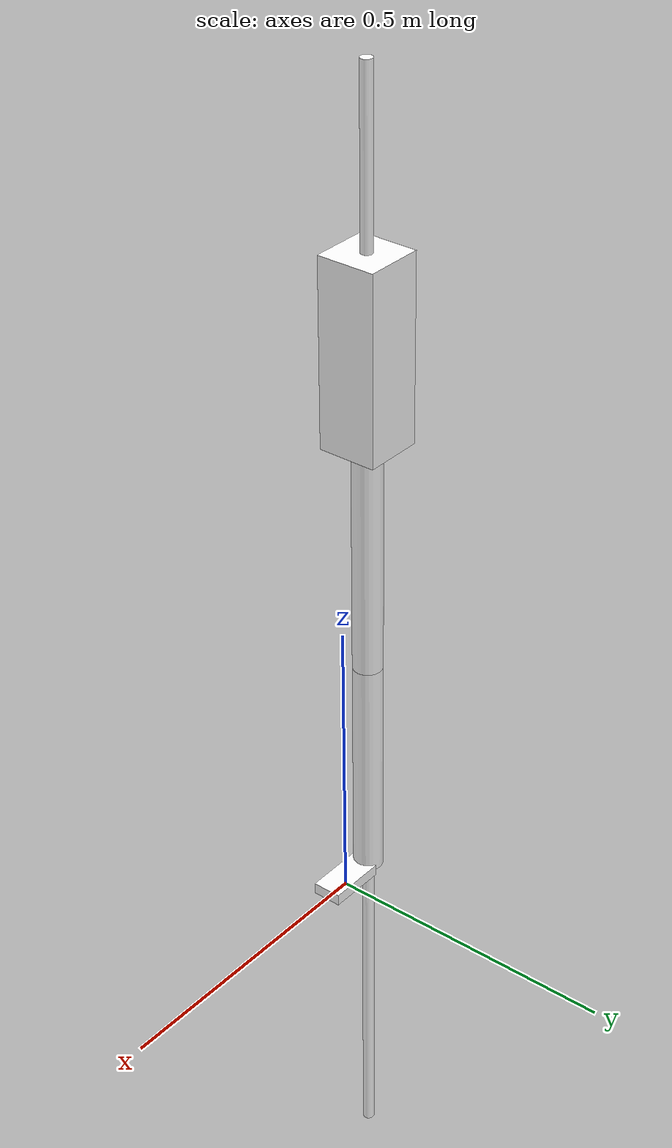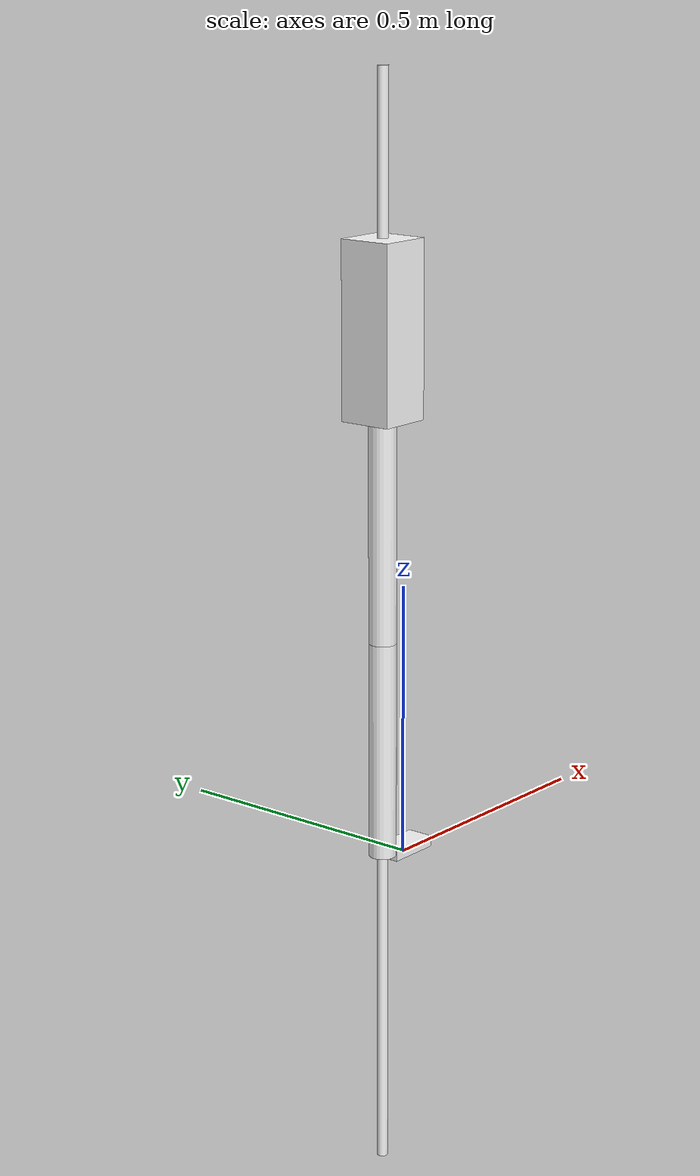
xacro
<?xml version="1.0"?>
<robot xmlns:xacro="http://www.ros.org/wiki/xacro"  >

    <xacro:include filename="inertial_macros.xacro"/>

    <material name="white">
        <color rgba="1 1 1 1" />
    </material>

    <material name="orange">
        <color rgba="1 0.3 0.1 1" />
    </material>

    <material name="blue">
        <color rgba="0.2 0.2 1 1" />
    </material>

    <material name="black">
        <color rgba="0 0 0 1" />
    </material>
<!-- BASE LINK -->

    <link name="base_link">

    </link>

    <!-- FOOT LINK -->

    <joint name="foot_joint" type="fixed">
        <parent link="base_link"/>
        <child link="foot"/>
        <origin xyz="-0.05 0 0"/>
    </joint>

    <link name="foot">
        <visual>
            <origin xyz="0.05 0 0.01"/>
            <geometry>
                <box size="0.1 0.05 0.02"/>
            </geometry>
            <material name="white"/>
        </visual>
        <collision>
            <origin xyz="0.05 0 0.01"/>
            <geometry>
                <box size="0.1 0.05 0.02"/>
            </geometry>
            <material name="white"/>
        </collision>
        <xacro:inertial_box mass="1" x="0.1" y="0.05" z="0.02">
            <origin xyz="0.05 0 0.01" rpy="0 0 0"/>
        </xacro:inertial_box>
    </link>
    <gazebo reference="foot">
        <material>Gazebo/White</material>
    </gazebo>
    <!-- ANKLE_ROLL LINK -->

    <joint name="ankle_roll_joint" type="continuous">
        <parent link="foot"/>
        <child link="ankle_roll"/>
        <origin xyz="-0.01 0 0.01" rpy="0 ${pi/2} 0"/>
        <axis xyz="0 0 1"/>
    </joint>

    <link name="ankle_roll">
        <visual>
            <geometry>
                <cylinder radius="0.01" length="0.01"/>
            </geometry>
            <material name="blue"/>
        </visual>
        <collision>
            <geometry>
                <cylinder radius="0.01" length="0.01"/>
            </geometry>
            <material name="blue"/>
        </collision>
        <xacro:inertial_cylinder mass="0.1" radius="0.01" length="0.01">
            <origin xyz="0 0 0" rpy="0 0 0"/>
        </xacro:inertial_cylinder>
    </link>

    <!-- ANKLE_PITCH LINK -->

    <joint name="ankle_pitch_joint" type="continuous">
        <parent link="ankle_roll"/>
        <child link="ankle_pitch"/>
        <origin xyz="0 0 0" rpy="${pi/2} -${pi/2} 0"/>
        <axis xyz="0 0 1"/>
    </joint>

    <link name="ankle_pitch">
        <visual>
            <geometry>
                <cylinder radius="0.01" length="0.01"/>
            </geometry>
            <material name="black"/>
        </visual>
        <collision>
            <geometry>
                <cylinder radius="0.01" length="0.01"/>
            </geometry>
            <material name="black"/>
        </collision>
        <xacro:inertial_cylinder mass="0.1" radius="0.01" length="0.01">
            <origin xyz="0 0 0" rpy="0 0 0"/>
        </xacro:inertial_cylinder>
    </link>

    <!-- CALF LINK -->

    <joint name="calf_joint" type="fixed">
        <parent link="ankle_pitch"/>
        <child link="calf"/>
        <origin xyz="0 0 0" rpy="-${pi/2} 0 0"/>
        <axis xyz="0 0 1"/>
    </joint>

    <link name="calf">
        <visual>
            <origin xyz="0 0 0.2" rpy="0 0 0"/>
            <geometry>
                <cylinder radius="0.025" length="0.4"/>
            </geometry>
            <material name="white"/>
        </visual>
        <collision>
            <origin xyz="0 0 0.2" rpy="0 0 0"/>
            <geometry>
                <cylinder radius="0.025" length="0.4"/>
            </geometry>
            <material name="white"/>
        </collision>
        <xacro:inertial_cylinder mass="5" radius="0.025" length="0.4">
            <origin xyz="0 0 0.2" rpy="0 0 0"/>
        </xacro:inertial_cylinder>
    </link>

    <!-- KNEE LINK -->

    <joint name="knee_joint" type="continuous">
        <parent link="calf"/>
        <child link="knee"/>
        <origin xyz="0 0 0.4" rpy="${pi/2} 0 0"/>
        <axis xyz="0 0 1"/>
    </joint>

    <link name="knee">
        <visual>
            <geometry>
                <cylinder radius="0.01" length="0.01"/>
            </geometry>
            <material name="blue"/>
        </visual>
        <collision>
            <geometry>
                <cylinder radius="0.01" length="0.01"/>
            </geometry>
            <material name="blue"/>
        </collision>
        <xacro:inertial_cylinder mass="0.1" radius="0.01" length="0.01">
            <origin xyz="0 0 0" rpy="0 0 0"/>
        </xacro:inertial_cylinder>
    </link>

    <!-- THIGH LINK -->

    <joint name="thigh_joint" type="fixed">
        <parent link="knee"/>
        <child link="tight"/>
        <origin xyz="0 0 0" rpy="-${pi/2} 0 0"/>
        <axis xyz="0 0 1"/>
    </joint>

    <link name="tight">
        <visual>
            <origin xyz="0 0 0.2" rpy="0 0 0"/>
            <geometry>
                <cylinder radius="0.025" length="0.4"/>
            </geometry>
            <material name="white"/>
        </visual>
        <collision>
            <origin xyz="0 0 0.2" rpy="0 0 0"/>
            <geometry>
                <cylinder radius="0.025" length="0.4"/>
            </geometry>
            <material name="white"/>
        </collision>
        <xacro:inertial_cylinder mass="5" radius="0.025" length="0.4">
            <origin xyz="0 0 0.2" rpy="0 0 0"/>
        </xacro:inertial_cylinder>
    </link>

    <!-- HIP_YAW LINK -->

    <joint name="hip_yaw_joint" type="continuous">
        <parent link="tight"/>
        <child link="hip_yaw"/>
        <origin xyz="0 0 0.4" rpy="0 0 0"/>
        <axis xyz="0 0 1"/>
    </joint>

    <link name="hip_yaw">
        <visual>
            <geometry>
                <cylinder radius="0.01" length="0.01"/>
            </geometry>
            <material name="blue"/>
        </visual>
        <collision>
            <geometry>
                <cylinder radius="0.01" length="0.01"/>
            </geometry>
            <material name="blue"/>
        </collision>
        <xacro:inertial_cylinder mass="0.1" radius="0.01" length="0.01">
            <origin xyz="0 0 0" rpy="0 0 0"/>
        </xacro:inertial_cylinder>
    </link>

    <!-- HIP_PITCH LINK -->

    <joint name="hip_pitch_joint" type="continuous">
        <parent link="hip_yaw"/>
        <child link="hip_pitch"/>
        <origin xyz="0 0 0" rpy="${pi/2} 0 0"/>
        <axis xyz="0 0 1"/>
    </joint>

    <link name="hip_pitch">
        <visual>
            <geometry>
                <cylinder radius="0.01" length="0.01"/>
            </geometry>
            <material name="blue"/>
        </visual>
        <collision>
            <geometry>
                <cylinder radius="0.01" length="0.01"/>
            </geometry>
            <material name="blue"/>
        </collision>
        <xacro:inertial_cylinder mass="0.1" radius="0.01" length="0.01">
            <origin xyz="0 0 0" rpy="0 0 0"/>
        </xacro:inertial_cylinder>
    </link>

    <!-- HIP_ROLL LINK -->

    <joint name="hip_roll_joint" type="continuous">
        <parent link="hip_pitch"/>
        <child link="hip_roll"/>
        <origin xyz="0 0 0" rpy="-${pi/2} 0 0"/>
        <axis xyz="1 0 0"/>
    </joint>

    <link name="hip_roll">
        <visual>
            <geometry>
                <cylinder radius="0.01" length="0.01"/>
            </geometry>
            <material name="blue"/>
        </visual>
        <collision>
            <geometry>
                <cylinder radius="0.01" length="0.01"/>
            </geometry>
            <material name="blue"/>
        </collision>
        <xacro:inertial_cylinder mass="0.1" radius="0.01" length="0.01">
            <origin xyz="0 0 0" rpy="0 0 0"/>
        </xacro:inertial_cylinder>
    </link>

    <!-- WAIST LINK -->

    <joint name="waist_joint" type="fixed">
        <parent link="hip_roll"/>
        <child link="waist"/>
        <origin xyz="0 0 0" rpy="0 0 0"/>
        <axis xyz="0 0 1"/>
    </joint>

    <link name="waist">
        <visual>
            <origin xyz="0 0 0.157"/>
            <geometry>
                <box size="0.1 0.1 0.314"/>
            </geometry>
            <material name="white"/>
        </visual>
        <collision>
            <origin xyz="0 0 0.157"/>
            <geometry>
                <box size="0.1 0.1 0.314"/>
            </geometry>
            <material name="white"/>
        </collision>
        <xacro:inertial_box mass="20" x="0.1" y="0.1" z="0.314">
            <origin xyz="0 0 0.157" rpy="0 0 0"/>
        </xacro:inertial_box>
    </link>

    <!-- WAIST_FIX LINK -->

    <joint name="waist_fix_joint" type="fixed">
        <parent link="waist"/>
        <child link="waist_fix"/>
        <origin xyz="0 0 0" rpy="0 0 0"/>
    </joint>

    <link name="waist_fix">
        <visual>
            <origin xyz="0 0 -0.4" rpy="0 0 0"/>
            <geometry>
                <cylinder radius="0.01" length="2"/>
            </geometry>
            <material name="white"/>
        </visual>
        <xacro:inertial_cylinder mass="10000" radius="0.01" length="2">
            <origin xyz="0 0 -0.4" rpy="0 0 0"/>
        </xacro:inertial_cylinder>
    </link>

    <!-- WAIST_FIX LINK -->

</robot>
